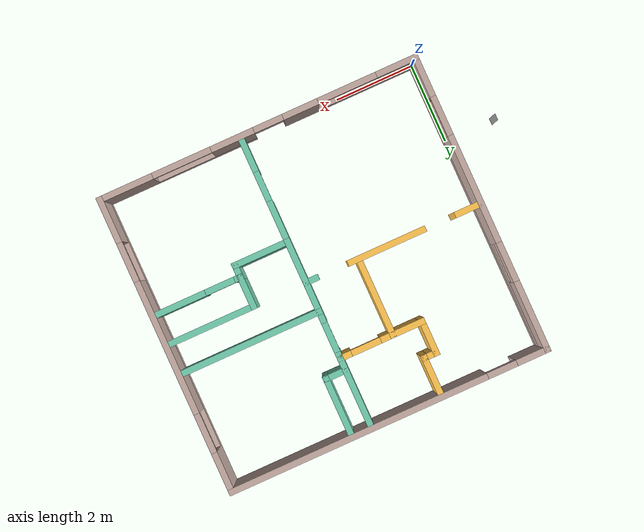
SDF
<?xml version='1.0'?>
<sdf version='1.6'>
  <model name='apartment'>
    <pose frame=''>4.05 3.75 0 0 -0 0</pose>
    <link name='Door_1'>
      <collision name='Door_1_Collision'>
        <geometry>
          <box>
            <size>0 0.17 2</size>
          </box>
        </geometry>
        <pose frame=''>0 0 1 0 -0 0</pose>
      </collision>
      <visual name='Door_1_Visual'>
        <pose frame=''>0 0 1 0 -0 0</pose>
        <geometry>
          <box>
            <size>0 0.17 2</size>
          </box>
        </geometry>
        <material>
          <script>
            <uri>file://media/materials/scripts/gazebo.material</uri>
            <name>Gazebo/Grey</name>
          </script>
        </material>
      </visual>
      <pose frame=''>-5.25474 -1.71616 0 0 0 -3.11558</pose>
    </link>
    <link name='Wall_0'>
      <pose frame=''>-0 3.75 0 0 -0 0</pose>
      <visual name='Wall_0_Visual_0'>
        <pose frame=''>-3.7 0 1.25 0 -0 0</pose>
        <geometry>
          <box>
            <size>0.85 0.15 2.5</size>
          </box>
        </geometry>
        <material>
          <script>
            <uri>file://media/materials/scripts/gazebo.material</uri>
            <name>Gazebo/Grey</name>
          </script>
          <ambient>0.760784 0.662745 0.627451 1</ambient>
        </material>
        <meta>
          <layer>0</layer>
        </meta>
      </visual>
      <collision name='Wall_0_Collision_0'>
        <geometry>
          <box>
            <size>0.85 0.15 2.5</size>
          </box>
        </geometry>
        <pose frame=''>-3.7 0 1.25 0 -0 0</pose>
      </collision>
      <visual name='Wall_0_Visual_1'>
        <pose frame=''>0.8 0 1.25 0 -0 0</pose>
        <geometry>
          <box>
            <size>6.65 0.15 2.5</size>
          </box>
        </geometry>
        <material>
          <script>
            <uri>file://media/materials/scripts/gazebo.material</uri>
            <name>Gazebo/Grey</name>
          </script>
          <ambient>0.760784 0.662745 0.627451 1</ambient>
        </material>
        <meta>
          <layer>0</layer>
        </meta>
      </visual>
      <collision name='Wall_0_Collision_1'>
        <geometry>
          <box>
            <size>6.65 0.15 2.5</size>
          </box>
        </geometry>
        <pose frame=''>0.8 0 1.25 0 -0 0</pose>
      </collision>
      <visual name='Wall_0_Visual_2'>
        <pose frame=''>-2.9 0 2.25 0 -0 0</pose>
        <geometry>
          <box>
            <size>0.75 0.15 0.5</size>
          </box>
        </geometry>
        <material>
          <script>
            <uri>file://media/materials/scripts/gazebo.material</uri>
            <name>Gazebo/Grey</name>
          </script>
          <ambient>0.760784 0.662745 0.627451 1</ambient>
        </material>
        <meta>
          <layer>0</layer>
        </meta>
      </visual>
      <collision name='Wall_0_Collision_2'>
        <geometry>
          <box>
            <size>0.75 0.15 0.5</size>
          </box>
        </geometry>
        <pose frame=''>-2.9 0 2.25 0 -0 0</pose>
      </collision>
    </link>
    <link name='Wall_1'>
      <pose frame=''>4.05 -0 0 0 -0 -1.5708</pose>
      <visual name='Wall_1_Visual_0'>
        <pose frame=''>-3.2875 0 1.25 0 -0 0</pose>
        <geometry>
          <box>
            <size>1.075 0.15 2.5</size>
          </box>
        </geometry>
        <material>
          <script>
            <uri>file://media/materials/scripts/gazebo.material</uri>
            <name>Gazebo/Grey</name>
          </script>
          <ambient>0.760784 0.662745 0.627451 1</ambient>
        </material>
        <meta>
          <layer>0</layer>
        </meta>
      </visual>
      <collision name='Wall_1_Collision_0'>
        <geometry>
          <box>
            <size>1.075 0.15 2.5</size>
          </box>
        </geometry>
        <pose frame=''>-3.2875 0 1.25 0 -0 0</pose>
      </collision>
      <visual name='Wall_1_Visual_1'>
        <pose frame=''>0.5375 0 0.25 0 -0 0</pose>
        <geometry>
          <box>
            <size>6.575 0.15 0.5</size>
          </box>
        </geometry>
        <material>
          <script>
            <uri>file://media/materials/scripts/gazebo.material</uri>
            <name>Gazebo/Grey</name>
          </script>
          <ambient>0.760784 0.662745 0.627451 1</ambient>
        </material>
        <meta>
          <layer>0</layer>
        </meta>
      </visual>
      <collision name='Wall_1_Collision_1'>
        <geometry>
          <box>
            <size>6.575 0.15 0.5</size>
          </box>
        </geometry>
        <pose frame=''>0.5375 0 0.25 0 -0 0</pose>
      </collision>
      <visual name='Wall_1_Visual_2'>
        <pose frame=''>-0.050682 0 1.5 0 -0 0</pose>
        <geometry>
          <box>
            <size>3.39864 0.15 2</size>
          </box>
        </geometry>
        <material>
          <script>
            <uri>file://media/materials/scripts/gazebo.material</uri>
            <name>Gazebo/Grey</name>
          </script>
          <ambient>0.760784 0.662745 0.627451 1</ambient>
        </material>
        <meta>
          <layer>0</layer>
        </meta>
      </visual>
      <collision name='Wall_1_Collision_2'>
        <geometry>
          <box>
            <size>3.39864 0.15 2</size>
          </box>
        </geometry>
        <pose frame=''>-0.050682 0 1.5 0 -0 0</pose>
      </collision>
      <visual name='Wall_1_Visual_3'>
        <pose frame=''>3.23682 0 1.5 0 -0 0</pose>
        <geometry>
          <box>
            <size>1.17636 0.15 2</size>
          </box>
        </geometry>
        <material>
          <script>
            <uri>file://media/materials/scripts/gazebo.material</uri>
            <name>Gazebo/Grey</name>
          </script>
          <ambient>0.760784 0.662745 0.627451 1</ambient>
        </material>
        <meta>
          <layer>0</layer>
        </meta>
      </visual>
      <collision name='Wall_1_Collision_3'>
        <geometry>
          <box>
            <size>1.17636 0.15 2</size>
          </box>
        </geometry>
        <pose frame=''>3.23682 0 1.5 0 -0 0</pose>
      </collision>
      <visual name='Wall_1_Visual_4'>
        <pose frame=''>-2.25 0 2.4 0 -0 0</pose>
        <geometry>
          <box>
            <size>1 0.15 0.2</size>
          </box>
        </geometry>
        <material>
          <script>
            <uri>file://media/materials/scripts/gazebo.material</uri>
            <name>Gazebo/Grey</name>
          </script>
          <ambient>0.760784 0.662745 0.627451 1</ambient>
        </material>
        <meta>
          <layer>0</layer>
        </meta>
      </visual>
      <collision name='Wall_1_Collision_4'>
        <geometry>
          <box>
            <size>1 0.15 0.2</size>
          </box>
        </geometry>
        <pose frame=''>-2.25 0 2.4 0 -0 0</pose>
      </collision>
      <visual name='Wall_1_Visual_5'>
        <pose frame=''>2.14864 0 2.4 0 -0 0</pose>
        <geometry>
          <box>
            <size>1 0.15 0.2</size>
          </box>
        </geometry>
        <material>
          <script>
            <uri>file://media/materials/scripts/gazebo.material</uri>
            <name>Gazebo/Grey</name>
          </script>
          <ambient>0.760784 0.662745 0.627451 1</ambient>
        </material>
        <meta>
          <layer>0</layer>
        </meta>
      </visual>
      <collision name='Wall_1_Collision_5'>
        <geometry>
          <box>
            <size>1 0.15 0.2</size>
          </box>
        </geometry>
        <pose frame=''>2.14864 0 2.4 0 -0 0</pose>
      </collision>
    </link>
    <link name='Wall_10'>
      <collision name='Wall_10_Collision'>
        <geometry>
          <box>
            <size>0.9 0.15 2.5</size>
          </box>
        </geometry>
        <pose frame=''>0 0 1.25 0 -0 0</pose>
      </collision>
      <visual name='Wall_10_Visual'>
        <pose frame=''>0 0 1.25 0 -0 0</pose>
        <geometry>
          <box>
            <size>0.9 0.15 2.5</size>
          </box>
        </geometry>
        <material>
          <script>
            <uri>file://media/materials/scripts/gazebo.material</uri>
            <name>Gazebo/Grey</name>
          </script>
          <ambient>0.435294 0.796078 0.67451 1</ambient>
        </material>
        <meta>
          <layer>0</layer>
        </meta>
      </visual>
      <pose frame=''>1.8 -0.375 0 0 -0 1.5708</pose>
    </link>
    <link name='Wall_11'>
      <collision name='Wall_11_Collision'>
        <geometry>
          <box>
            <size>2.25 0.15 2.5</size>
          </box>
        </geometry>
        <pose frame=''>0 0 1.25 0 -0 0</pose>
      </collision>
      <visual name='Wall_11_Visual'>
        <pose frame=''>0 0 1.25 0 -0 0</pose>
        <geometry>
          <box>
            <size>2.25 0.15 2.5</size>
          </box>
        </geometry>
        <material>
          <script>
            <uri>file://media/materials/scripts/gazebo.material</uri>
            <name>Gazebo/Grey</name>
          </script>
          <ambient>0.435294 0.796078 0.67451 1</ambient>
        </material>
        <meta>
          <layer>0</layer>
        </meta>
      </visual>
      <pose frame=''>2.85 -0 0 0 -0 0</pose>
    </link>
    <link name='Wall_13'>
      <collision name='Wall_13_Collision'>
        <geometry>
          <box>
            <size>3.6 0.15 2.5</size>
          </box>
        </geometry>
        <pose frame=''>0 0 1.25 0 -0 0</pose>
      </collision>
      <visual name='Wall_13_Visual'>
        <pose frame=''>0 0 1.25 0 -0 0</pose>
        <geometry>
          <box>
            <size>3.6 0.15 2.5</size>
          </box>
        </geometry>
        <material>
          <script>
            <uri>file://media/materials/scripts/gazebo.material</uri>
            <name>Gazebo/Grey</name>
          </script>
          <ambient>0.435294 0.796078 0.67451 1</ambient>
        </material>
        <meta>
          <layer>0</layer>
        </meta>
      </visual>
      <pose frame=''>2.175 0.75 0 0 -0 3.14159</pose>
    </link>
    <link name='Wall_14'>
      <collision name='Wall_14_Collision'>
        <geometry>
          <box>
            <size>1.95 0.15 2.5</size>
          </box>
        </geometry>
        <pose frame=''>0 0 1.25 0 -0 0</pose>
      </collision>
      <visual name='Wall_14_Visual'>
        <pose frame=''>0 0 1.25 0 -0 0</pose>
        <geometry>
          <box>
            <size>1.95 0.15 2.5</size>
          </box>
        </geometry>
        <material>
          <script>
            <uri>file://media/materials/scripts/gazebo.material</uri>
            <name>Gazebo/Grey</name>
          </script>
          <ambient>0.435294 0.796078 0.67451 1</ambient>
        </material>
        <meta>
          <layer>0</layer>
        </meta>
      </visual>
      <pose frame=''>0.45 -0.15 0 0 -0 -1.5708</pose>
    </link>
    <link name='Wall_16'>
      <pose frame=''>0.45 2.175 0 0 -0 1.5708</pose>
      <visual name='Wall_16_Visual_0'>
        <pose frame=''>-1.31932 0 1.25 0 -0 0</pose>
        <geometry>
          <box>
            <size>0.361363 0.15 2.5</size>
          </box>
        </geometry>
        <material>
          <script>
            <uri>file://media/materials/scripts/gazebo.material</uri>
            <name>Gazebo/Grey</name>
          </script>
          <ambient>0.435294 0.796078 0.67451 1</ambient>
        </material>
        <meta>
          <layer>0</layer>
        </meta>
      </visual>
      <collision name='Wall_16_Collision_0'>
        <geometry>
          <box>
            <size>0.361363 0.15 2.5</size>
          </box>
        </geometry>
        <pose frame=''>-1.31932 0 1.25 0 -0 0</pose>
      </collision>
      <visual name='Wall_16_Visual_1'>
        <pose frame=''>0.555682 0 1.25 0 -0 0</pose>
        <geometry>
          <box>
            <size>1.88864 0.15 2.5</size>
          </box>
        </geometry>
        <material>
          <script>
            <uri>file://media/materials/scripts/gazebo.material</uri>
            <name>Gazebo/Grey</name>
          </script>
          <ambient>0.435294 0.796078 0.67451 1</ambient>
        </material>
        <meta>
          <layer>0</layer>
        </meta>
      </visual>
      <collision name='Wall_16_Collision_1'>
        <geometry>
          <box>
            <size>1.88864 0.15 2.5</size>
          </box>
        </geometry>
        <pose frame=''>0.555682 0 1.25 0 -0 0</pose>
      </collision>
      <visual name='Wall_16_Visual_2'>
        <pose frame=''>-0.763637 0 2.25 0 -0 0</pose>
        <geometry>
          <box>
            <size>0.75 0.15 0.5</size>
          </box>
        </geometry>
        <material>
          <script>
            <uri>file://media/materials/scripts/gazebo.material</uri>
            <name>Gazebo/Grey</name>
          </script>
          <ambient>0.435294 0.796078 0.67451 1</ambient>
        </material>
        <meta>
          <layer>0</layer>
        </meta>
      </visual>
      <collision name='Wall_16_Collision_2'>
        <geometry>
          <box>
            <size>0.75 0.15 0.5</size>
          </box>
        </geometry>
        <pose frame=''>-0.763637 0 2.25 0 -0 0</pose>
      </collision>
    </link>
    <link name='Wall_18'>
      <collision name='Wall_18_Collision'>
        <geometry>
          <box>
            <size>0.65 0.15 2.5</size>
          </box>
        </geometry>
        <pose frame=''>0 0 1.25 0 -0 0</pose>
      </collision>
      <visual name='Wall_18_Visual'>
        <pose frame=''>0 0 1.25 0 -0 0</pose>
        <geometry>
          <box>
            <size>0.65 0.15 2.5</size>
          </box>
        </geometry>
        <material>
          <script>
            <uri>file://media/materials/scripts/gazebo.material</uri>
            <name>Gazebo/Grey</name>
          </script>
          <ambient>0.435294 0.796078 0.67451 1</ambient>
        </material>
        <meta>
          <layer>0</layer>
        </meta>
      </visual>
      <pose frame=''>0.7 2.25 0 0 -0 0</pose>
    </link>
    <link name='Wall_19'>
      <collision name='Wall_19_Collision'>
        <geometry>
          <box>
            <size>1.5 0.15 2.5</size>
          </box>
        </geometry>
        <pose frame=''>0 0 1.25 0 -0 0</pose>
      </collision>
      <visual name='Wall_19_Visual'>
        <pose frame=''>0 0 1.25 0 -0 0</pose>
        <geometry>
          <box>
            <size>1.5 0.15 2.5</size>
          </box>
        </geometry>
        <material>
          <script>
            <uri>file://media/materials/scripts/gazebo.material</uri>
            <name>Gazebo/Grey</name>
          </script>
          <ambient>0.435294 0.796078 0.67451 1</ambient>
        </material>
        <meta>
          <layer>0</layer>
        </meta>
      </visual>
      <pose frame=''>0.95 2.925 0 0 -0 1.5708</pose>
    </link>
    <link name='Wall_2'>
      <pose frame=''>-0 -3.75 0 0 -0 3.14159</pose>
      <visual name='Wall_2_Visual_0'>
        <pose frame=''>-3.4125 0 1.25 0 -0 0</pose>
        <geometry>
          <box>
            <size>1.425 0.15 2.5</size>
          </box>
        </geometry>
        <material>
          <script>
            <uri>file://media/materials/scripts/gazebo.material</uri>
            <name>Gazebo/Grey</name>
          </script>
          <ambient>0.760784 0.662745 0.627451 1</ambient>
        </material>
        <meta>
          <layer>0</layer>
        </meta>
      </visual>
      <collision name='Wall_2_Collision_0'>
        <geometry>
          <box>
            <size>1.425 0.15 2.5</size>
          </box>
        </geometry>
        <pose frame=''>-3.4125 0 1.25 0 -0 0</pose>
      </collision>
      <visual name='Wall_2_Visual_1'>
        <pose frame=''>1.1 0 1.25 0 -0 0</pose>
        <geometry>
          <box>
            <size>0.899991 0.15 2.5</size>
          </box>
        </geometry>
        <material>
          <script>
            <uri>file://media/materials/scripts/gazebo.material</uri>
            <name>Gazebo/Grey</name>
          </script>
          <ambient>0.760784 0.662745 0.627451 1</ambient>
        </material>
        <meta>
          <layer>0</layer>
        </meta>
      </visual>
      <collision name='Wall_2_Collision_1'>
        <geometry>
          <box>
            <size>0.899991 0.15 2.5</size>
          </box>
        </geometry>
        <pose frame=''>1.1 0 1.25 0 -0 0</pose>
      </collision>
      <visual name='Wall_2_Visual_2'>
        <pose frame=''>-1.4 0 0.25 0 -0 0</pose>
        <geometry>
          <box>
            <size>2.60001 0.15 0.5</size>
          </box>
        </geometry>
        <material>
          <script>
            <uri>file://media/materials/scripts/gazebo.material</uri>
            <name>Gazebo/Grey</name>
          </script>
          <ambient>0.760784 0.662745 0.627451 1</ambient>
        </material>
        <meta>
          <layer>0</layer>
        </meta>
      </visual>
      <collision name='Wall_2_Collision_2'>
        <geometry>
          <box>
            <size>2.60001 0.15 0.5</size>
          </box>
        </geometry>
        <pose frame=''>-1.4 0 0.25 0 -0 0</pose>
      </collision>
      <visual name='Wall_2_Visual_3'>
        <pose frame=''>2.8375 0 0.25 0 -0 0</pose>
        <geometry>
          <box>
            <size>2.575 0.15 0.5</size>
          </box>
        </geometry>
        <material>
          <script>
            <uri>file://media/materials/scripts/gazebo.material</uri>
            <name>Gazebo/Grey</name>
          </script>
          <ambient>0.760784 0.662745 0.627451 1</ambient>
        </material>
        <meta>
          <layer>0</layer>
        </meta>
      </visual>
      <collision name='Wall_2_Collision_3'>
        <geometry>
          <box>
            <size>2.575 0.15 0.5</size>
          </box>
        </geometry>
        <pose frame=''>2.8375 0 0.25 0 -0 0</pose>
      </collision>
      <visual name='Wall_2_Visual_4'>
        <pose frame=''>-0.649995 0 1.5 0 -0 0</pose>
        <geometry>
          <box>
            <size>1.10001 0.15 2</size>
          </box>
        </geometry>
        <material>
          <script>
            <uri>file://media/materials/scripts/gazebo.material</uri>
            <name>Gazebo/Grey</name>
          </script>
          <ambient>0.760784 0.662745 0.627451 1</ambient>
        </material>
        <meta>
          <layer>0</layer>
        </meta>
      </visual>
      <collision name='Wall_2_Collision_4'>
        <geometry>
          <box>
            <size>1.10001 0.15 2</size>
          </box>
        </geometry>
        <pose frame=''>-0.649995 0 1.5 0 -0 0</pose>
      </collision>
      <visual name='Wall_2_Visual_5'>
        <pose frame=''>-0.649995 0 1.5 0 -0 0</pose>
        <geometry>
          <box>
            <size>1.10001 0.15 2</size>
          </box>
        </geometry>
        <material>
          <script>
            <uri>file://media/materials/scripts/gazebo.material</uri>
            <name>Gazebo/Grey</name>
          </script>
          <ambient>0.760784 0.662745 0.627451 1</ambient>
        </material>
        <meta>
          <layer>0</layer>
        </meta>
      </visual>
      <collision name='Wall_2_Collision_5'>
        <geometry>
          <box>
            <size>1.10001 0.15 2</size>
          </box>
        </geometry>
        <pose frame=''>-0.649995 0 1.5 0 -0 0</pose>
      </collision>
      <visual name='Wall_2_Visual_6'>
        <pose frame=''>3.5875 0 1.5 0 -0 0</pose>
        <geometry>
          <box>
            <size>1.075 0.15 2</size>
          </box>
        </geometry>
        <material>
          <script>
            <uri>file://media/materials/scripts/gazebo.material</uri>
            <name>Gazebo/Grey</name>
          </script>
          <ambient>0.760784 0.662745 0.627451 1</ambient>
        </material>
        <meta>
          <layer>0</layer>
        </meta>
      </visual>
      <collision name='Wall_2_Collision_6'>
        <geometry>
          <box>
            <size>1.075 0.15 2</size>
          </box>
        </geometry>
        <pose frame=''>3.5875 0 1.5 0 -0 0</pose>
      </collision>
      <visual name='Wall_2_Visual_7'>
        <pose frame=''>0.275009 0 2.25 0 -0 0</pose>
        <geometry>
          <box>
            <size>0.75 0.15 0.5</size>
          </box>
        </geometry>
        <material>
          <script>
            <uri>file://media/materials/scripts/gazebo.material</uri>
            <name>Gazebo/Grey</name>
          </script>
          <ambient>0.760784 0.662745 0.627451 1</ambient>
        </material>
        <meta>
          <layer>0</layer>
        </meta>
      </visual>
      <collision name='Wall_2_Collision_7'>
        <geometry>
          <box>
            <size>0.75 0.15 0.5</size>
          </box>
        </geometry>
        <pose frame=''>0.275009 0 2.25 0 -0 0</pose>
      </collision>
      <visual name='Wall_2_Visual_8'>
        <pose frame=''>0.275009 0 2.25 0 -0 0</pose>
        <geometry>
          <box>
            <size>0.75 0.15 0.5</size>
          </box>
        </geometry>
        <material>
          <script>
            <uri>file://media/materials/scripts/gazebo.material</uri>
            <name>Gazebo/Grey</name>
          </script>
          <ambient>0.760784 0.662745 0.627451 1</ambient>
        </material>
        <meta>
          <layer>0</layer>
        </meta>
      </visual>
      <collision name='Wall_2_Collision_8'>
        <geometry>
          <box>
            <size>0.75 0.15 0.5</size>
          </box>
        </geometry>
        <pose frame=''>0.275009 0 2.25 0 -0 0</pose>
      </collision>
      <visual name='Wall_2_Visual_9'>
        <pose frame=''>-1.95 0 2.4 0 -0 0</pose>
        <geometry>
          <box>
            <size>1.5 0.15 0.2</size>
          </box>
        </geometry>
        <material>
          <script>
            <uri>file://media/materials/scripts/gazebo.material</uri>
            <name>Gazebo/Grey</name>
          </script>
          <ambient>0.760784 0.662745 0.627451 1</ambient>
        </material>
        <meta>
          <layer>0</layer>
        </meta>
      </visual>
      <collision name='Wall_2_Collision_9'>
        <geometry>
          <box>
            <size>1.5 0.15 0.2</size>
          </box>
        </geometry>
        <pose frame=''>-1.95 0 2.4 0 -0 0</pose>
      </collision>
      <visual name='Wall_2_Visual_10'>
        <pose frame=''>2.3 0 2.4 0 -0 0</pose>
        <geometry>
          <box>
            <size>1.5 0.15 0.2</size>
          </box>
        </geometry>
        <material>
          <script>
            <uri>file://media/materials/scripts/gazebo.material</uri>
            <name>Gazebo/Grey</name>
          </script>
          <ambient>0.760784 0.662745 0.627451 1</ambient>
        </material>
        <meta>
          <layer>0</layer>
        </meta>
      </visual>
      <collision name='Wall_2_Collision_10'>
        <geometry>
          <box>
            <size>1.5 0.15 0.2</size>
          </box>
        </geometry>
        <pose frame=''>2.3 0 2.4 0 -0 0</pose>
      </collision>
    </link>
    <link name='Wall_25'>
      <collision name='Wall_25_Collision'>
        <geometry>
          <box>
            <size>0.9 0.15 2.5</size>
          </box>
        </geometry>
        <pose frame=''>0 0 1.25 0 -0 0</pose>
      </collision>
      <visual name='Wall_25_Visual'>
        <pose frame=''>0 0 1.25 0 -0 0</pose>
        <geometry>
          <box>
            <size>0.9 0.15 2.5</size>
          </box>
        </geometry>
        <material>
          <script>
            <uri>file://media/materials/scripts/gazebo.material</uri>
            <name>Gazebo/Grey</name>
          </script>
          <ambient>1 0.764706 0.305882 1</ambient>
        </material>
        <meta>
          <layer>0</layer>
        </meta>
      </visual>
      <pose frame=''>-1.275 1.95 0 0 -0 3.14159</pose>
    </link>
    <link name='Wall_26'>
      <collision name='Wall_26_Collision'>
        <geometry>
          <box>
            <size>0.95 0.15 2.5</size>
          </box>
        </geometry>
        <pose frame=''>0 0 1.25 0 -0 0</pose>
      </collision>
      <visual name='Wall_26_Visual'>
        <pose frame=''>0 0 1.25 0 -0 0</pose>
        <geometry>
          <box>
            <size>0.95 0.15 2.5</size>
          </box>
        </geometry>
        <material>
          <script>
            <uri>file://media/materials/scripts/gazebo.material</uri>
            <name>Gazebo/Grey</name>
          </script>
          <ambient>1 0.764706 0.305882 1</ambient>
        </material>
        <meta>
          <layer>0</layer>
        </meta>
      </visual>
      <pose frame=''>-1.65 2.35 0 0 -0 1.5708</pose>
    </link>
    <link name='Wall_27'>
      <collision name='Wall_27_Collision'>
        <geometry>
          <box>
            <size>0.45 0.15 2.5</size>
          </box>
        </geometry>
        <pose frame=''>0 0 1.25 0 -0 0</pose>
      </collision>
      <visual name='Wall_27_Visual'>
        <pose frame=''>0 0 1.25 0 -0 0</pose>
        <geometry>
          <box>
            <size>0.45 0.15 2.5</size>
          </box>
        </geometry>
        <material>
          <script>
            <uri>file://media/materials/scripts/gazebo.material</uri>
            <name>Gazebo/Grey</name>
          </script>
          <ambient>1 0.764706 0.305882 1</ambient>
        </material>
        <meta>
          <layer>0</layer>
        </meta>
      </visual>
      <pose frame=''>-1.5 2.75 0 0 -0 0</pose>
    </link>
    <link name='Wall_28'>
      <collision name='Wall_28_Collision'>
        <geometry>
          <box>
            <size>1 0.15 2.5</size>
          </box>
        </geometry>
        <pose frame=''>0 0 1.25 0 -0 0</pose>
      </collision>
      <visual name='Wall_28_Visual'>
        <pose frame=''>0 0 1.25 0 -0 0</pose>
        <geometry>
          <box>
            <size>1 0.15 2.5</size>
          </box>
        </geometry>
        <material>
          <script>
            <uri>file://media/materials/scripts/gazebo.material</uri>
            <name>Gazebo/Grey</name>
          </script>
          <ambient>1 0.764706 0.305882 1</ambient>
        </material>
        <meta>
          <layer>0</layer>
        </meta>
      </visual>
      <pose frame=''>-1.35 3.175 0 0 -0 1.5708</pose>
    </link>
    <link name='Wall_3'>
      <pose frame=''>-4.05 -0 0 0 -0 1.5708</pose>
      <visual name='Wall_3_Visual_0'>
        <pose frame=''>-3.2875 0 1.25 0 -0 0</pose>
        <geometry>
          <box>
            <size>1.075 0.15 2.5</size>
          </box>
        </geometry>
        <material>
          <script>
            <uri>file://media/materials/scripts/gazebo.material</uri>
            <name>Gazebo/Grey</name>
          </script>
          <ambient>0.760784 0.662745 0.627451 1</ambient>
        </material>
        <meta>
          <layer>0</layer>
        </meta>
      </visual>
      <collision name='Wall_3_Collision_0'>
        <geometry>
          <box>
            <size>1.075 0.15 2.5</size>
          </box>
        </geometry>
        <pose frame=''>-3.2875 0 1.25 0 -0 0</pose>
      </collision>
      <visual name='Wall_3_Visual_1'>
        <pose frame=''>0.5375 0 0.25 0 -0 0</pose>
        <geometry>
          <box>
            <size>6.575 0.15 0.5</size>
          </box>
        </geometry>
        <material>
          <script>
            <uri>file://media/materials/scripts/gazebo.material</uri>
            <name>Gazebo/Grey</name>
          </script>
          <ambient>0.760784 0.662745 0.627451 1</ambient>
        </material>
        <meta>
          <layer>0</layer>
        </meta>
      </visual>
      <collision name='Wall_3_Collision_1'>
        <geometry>
          <box>
            <size>6.575 0.15 0.5</size>
          </box>
        </geometry>
        <pose frame=''>0.5375 0 0.25 0 -0 0</pose>
      </collision>
      <visual name='Wall_3_Visual_2'>
        <pose frame=''>-0.375 0 1.5 0 -0 0</pose>
        <geometry>
          <box>
            <size>2.75 0.15 2</size>
          </box>
        </geometry>
        <material>
          <script>
            <uri>file://media/materials/scripts/gazebo.material</uri>
            <name>Gazebo/Grey</name>
          </script>
          <ambient>0.760784 0.662745 0.627451 1</ambient>
        </material>
        <meta>
          <layer>0</layer>
        </meta>
      </visual>
      <collision name='Wall_3_Collision_2'>
        <geometry>
          <box>
            <size>2.75 0.15 2</size>
          </box>
        </geometry>
        <pose frame=''>-0.375 0 1.5 0 -0 0</pose>
      </collision>
      <visual name='Wall_3_Visual_3'>
        <pose frame=''>2.4125 0 0.825 0 -0 0</pose>
        <geometry>
          <box>
            <size>2.825 0.15 0.65</size>
          </box>
        </geometry>
        <material>
          <script>
            <uri>file://media/materials/scripts/gazebo.material</uri>
            <name>Gazebo/Grey</name>
          </script>
          <ambient>0.760784 0.662745 0.627451 1</ambient>
        </material>
        <meta>
          <layer>0</layer>
        </meta>
      </visual>
      <collision name='Wall_3_Collision_3'>
        <geometry>
          <box>
            <size>2.825 0.15 0.65</size>
          </box>
        </geometry>
        <pose frame=''>2.4125 0 0.825 0 -0 0</pose>
      </collision>
      <visual name='Wall_3_Visual_4'>
        <pose frame=''>2.9125 0 1.825 0 -0 0</pose>
        <geometry>
          <box>
            <size>1.825 0.15 1.35</size>
          </box>
        </geometry>
        <material>
          <script>
            <uri>file://media/materials/scripts/gazebo.material</uri>
            <name>Gazebo/Grey</name>
          </script>
          <ambient>0.760784 0.662745 0.627451 1</ambient>
        </material>
        <meta>
          <layer>0</layer>
        </meta>
      </visual>
      <collision name='Wall_3_Collision_4'>
        <geometry>
          <box>
            <size>1.825 0.15 1.35</size>
          </box>
        </geometry>
        <pose frame=''>2.9125 0 1.825 0 -0 0</pose>
      </collision>
      <visual name='Wall_3_Visual_5'>
        <pose frame=''>1.5 0 2.075 0 -0 0</pose>
        <geometry>
          <box>
            <size>1 0.15 0.85</size>
          </box>
        </geometry>
        <material>
          <script>
            <uri>file://media/materials/scripts/gazebo.material</uri>
            <name>Gazebo/Grey</name>
          </script>
          <ambient>0.760784 0.662745 0.627451 1</ambient>
        </material>
        <meta>
          <layer>0</layer>
        </meta>
      </visual>
      <collision name='Wall_3_Collision_5'>
        <geometry>
          <box>
            <size>1 0.15 0.85</size>
          </box>
        </geometry>
        <pose frame=''>1.5 0 2.075 0 -0 0</pose>
      </collision>
      <visual name='Wall_3_Visual_6'>
        <pose frame=''>-2.25 0 2.4 0 -0 0</pose>
        <geometry>
          <box>
            <size>1 0.15 0.2</size>
          </box>
        </geometry>
        <material>
          <script>
            <uri>file://media/materials/scripts/gazebo.material</uri>
            <name>Gazebo/Grey</name>
          </script>
          <ambient>0.760784 0.662745 0.627451 1</ambient>
        </material>
        <meta>
          <layer>0</layer>
        </meta>
      </visual>
      <collision name='Wall_3_Collision_6'>
        <geometry>
          <box>
            <size>1 0.15 0.2</size>
          </box>
        </geometry>
        <pose frame=''>-2.25 0 2.4 0 -0 0</pose>
      </collision>
    </link>
    <link name='Wall_33'>
      <collision name='Wall_33_Collision'>
        <geometry>
          <box>
            <size>2 0.15 2.5</size>
          </box>
        </geometry>
        <pose frame=''>0 0 1.25 0 -0 0</pose>
      </collision>
      <visual name='Wall_33_Visual'>
        <pose frame=''>0 0 1.25 0 -0 0</pose>
        <geometry>
          <box>
            <size>2 0.15 2.5</size>
          </box>
        </geometry>
        <material>
          <script>
            <uri>file://media/materials/scripts/gazebo.material</uri>
            <name>Gazebo/Grey</name>
          </script>
          <ambient>1 0.764706 0.305882 1</ambient>
        </material>
        <meta>
          <layer>0</layer>
        </meta>
      </visual>
      <pose frame=''>-1.625 -0 0 0 -0 3.14159</pose>
    </link>
    <link name='Wall_35'>
      <collision name='Wall_35_Collision'>
        <geometry>
          <box>
            <size>0.735 0.15 2.5</size>
          </box>
        </geometry>
        <pose frame=''>0 0 1.25 0 -0 0</pose>
      </collision>
      <visual name='Wall_35_Visual'>
        <pose frame=''>0 0 1.25 0 -0 0</pose>
        <geometry>
          <box>
            <size>0.735 0.15 2.5</size>
          </box>
        </geometry>
        <material>
          <script>
            <uri>file://media/materials/scripts/gazebo.material</uri>
            <name>Gazebo/Grey</name>
          </script>
          <ambient>1 0.764706 0.305882 1</ambient>
        </material>
        <meta>
          <layer>0</layer>
        </meta>
      </visual>
      <pose frame=''>-3.7425 -0 0 0 -0 0</pose>
    </link>
    <link name='Wall_38'>
      <collision name='Wall_38_Collision'>
        <geometry>
          <box>
            <size>0.4 0.15 2.5</size>
          </box>
        </geometry>
        <pose frame=''>0 0 1.25 0 -0 0</pose>
      </collision>
      <visual name='Wall_38_Visual'>
        <pose frame=''>0 0 1.25 0 -0 0</pose>
        <geometry>
          <box>
            <size>0.4 0.15 2.5</size>
          </box>
        </geometry>
        <material>
          <script>
            <uri>file://media/materials/scripts/gazebo.material</uri>
            <name>Gazebo/Grey</name>
          </script>
          <ambient>0.435294 0.796078 0.67451 1</ambient>
        </material>
        <meta>
          <layer>0</layer>
        </meta>
      </visual>
      <pose frame=''>0.325 -0 0 0 -0 3.14159</pose>
    </link>
    <link name='Wall_40'>
      <collision name='Wall_40_Collision'>
        <geometry>
          <box>
            <size>2 0.15 2.5</size>
          </box>
        </geometry>
        <pose frame=''>0 0 1.25 0 -0 0</pose>
      </collision>
      <visual name='Wall_40_Visual'>
        <pose frame=''>0 0 1.25 0 -0 0</pose>
        <geometry>
          <box>
            <size>2 0.15 2.5</size>
          </box>
        </geometry>
        <material>
          <script>
            <uri>file://media/materials/scripts/gazebo.material</uri>
            <name>Gazebo/Grey</name>
          </script>
          <ambient>1 0.764706 0.305882 1</ambient>
        </material>
        <meta>
          <layer>0</layer>
        </meta>
      </visual>
      <pose frame=''>-0.9 1.025 0 0 -0 -1.5708</pose>
    </link>
    <link name='Wall_42'>
      <pose frame=''>-0.225 1.95 0 0 -0 0</pose>
      <visual name='Wall_42_Visual_0'>
        <pose frame=''>-0.557505 0 1.25 0 -0 0</pose>
        <geometry>
          <box>
            <size>0.384991 0.15 2.5</size>
          </box>
        </geometry>
        <material>
          <script>
            <uri>file://media/materials/scripts/gazebo.material</uri>
            <name>Gazebo/Grey</name>
          </script>
          <ambient>1 0.764706 0.305882 1</ambient>
        </material>
        <meta>
          <layer>0</layer>
        </meta>
      </visual>
      <collision name='Wall_42_Collision_0'>
        <geometry>
          <box>
            <size>0.384991 0.15 2.5</size>
          </box>
        </geometry>
        <pose frame=''>-0.557505 0 1.25 0 -0 0</pose>
      </collision>
      <visual name='Wall_42_Visual_1'>
        <pose frame=''>0.567495 0 1.25 0 -0 0</pose>
        <geometry>
          <box>
            <size>0.365009 0.15 2.5</size>
          </box>
        </geometry>
        <material>
          <script>
            <uri>file://media/materials/scripts/gazebo.material</uri>
            <name>Gazebo/Grey</name>
          </script>
          <ambient>1 0.764706 0.305882 1</ambient>
        </material>
        <meta>
          <layer>0</layer>
        </meta>
      </visual>
      <collision name='Wall_42_Collision_1'>
        <geometry>
          <box>
            <size>0.365009 0.15 2.5</size>
          </box>
        </geometry>
        <pose frame=''>0.567495 0 1.25 0 -0 0</pose>
      </collision>
      <visual name='Wall_42_Visual_2'>
        <pose frame=''>0.009991 0 2.25 0 -0 0</pose>
        <geometry>
          <box>
            <size>0.75 0.15 0.5</size>
          </box>
        </geometry>
        <material>
          <script>
            <uri>file://media/materials/scripts/gazebo.material</uri>
            <name>Gazebo/Grey</name>
          </script>
          <ambient>1 0.764706 0.305882 1</ambient>
        </material>
        <meta>
          <layer>0</layer>
        </meta>
      </visual>
      <collision name='Wall_42_Collision_2'>
        <geometry>
          <box>
            <size>0.75 0.15 0.5</size>
          </box>
        </geometry>
        <pose frame=''>0.009991 0 2.25 0 -0 0</pose>
      </collision>
    </link>
    <link name='Wall_5'>
      <pose frame=''>0.45 -2.325 0 0 -0 1.5708</pose>
      <visual name='Wall_5_Visual_0'>
        <pose frame=''>-0.934318 0 1.25 0 -0 0</pose>
        <geometry>
          <box>
            <size>0.831364 0.15 2.5</size>
          </box>
        </geometry>
        <material>
          <script>
            <uri>file://media/materials/scripts/gazebo.material</uri>
            <name>Gazebo/Grey</name>
          </script>
          <ambient>0.435294 0.796078 0.67451 1</ambient>
        </material>
        <meta>
          <layer>0</layer>
        </meta>
      </visual>
      <collision name='Wall_5_Collision_0'>
        <geometry>
          <box>
            <size>0.831364 0.15 2.5</size>
          </box>
        </geometry>
        <pose frame=''>-0.934318 0 1.25 0 -0 0</pose>
      </collision>
      <visual name='Wall_5_Visual_1'>
        <pose frame=''>0.790682 0 1.25 0 -0 0</pose>
        <geometry>
          <box>
            <size>1.11864 0.15 2.5</size>
          </box>
        </geometry>
        <material>
          <script>
            <uri>file://media/materials/scripts/gazebo.material</uri>
            <name>Gazebo/Grey</name>
          </script>
          <ambient>0.435294 0.796078 0.67451 1</ambient>
        </material>
        <meta>
          <layer>0</layer>
        </meta>
      </visual>
      <collision name='Wall_5_Collision_1'>
        <geometry>
          <box>
            <size>1.11864 0.15 2.5</size>
          </box>
        </geometry>
        <pose frame=''>0.790682 0 1.25 0 -0 0</pose>
      </collision>
      <visual name='Wall_5_Visual_2'>
        <pose frame=''>-0.143636 0 2.25 0 -0 0</pose>
        <geometry>
          <box>
            <size>0.75 0.15 0.5</size>
          </box>
        </geometry>
        <material>
          <script>
            <uri>file://media/materials/scripts/gazebo.material</uri>
            <name>Gazebo/Grey</name>
          </script>
          <ambient>0.435294 0.796078 0.67451 1</ambient>
        </material>
        <meta>
          <layer>0</layer>
        </meta>
      </visual>
      <collision name='Wall_5_Collision_2'>
        <geometry>
          <box>
            <size>0.75 0.15 0.5</size>
          </box>
        </geometry>
        <pose frame=''>-0.143636 0 2.25 0 -0 0</pose>
      </collision>
    </link>
    <link name='Wall_6'>
      <collision name='Wall_6_Collision'>
        <geometry>
          <box>
            <size>1.5 0.15 2.5</size>
          </box>
        </geometry>
        <pose frame=''>0 0 1.25 0 -0 0</pose>
      </collision>
      <visual name='Wall_6_Visual'>
        <pose frame=''>0 0 1.25 0 -0 0</pose>
        <geometry>
          <box>
            <size>1.5 0.15 2.5</size>
          </box>
        </geometry>
        <material>
          <script>
            <uri>file://media/materials/scripts/gazebo.material</uri>
            <name>Gazebo/Grey</name>
          </script>
          <ambient>0.435294 0.796078 0.67451 1</ambient>
        </material>
        <meta>
          <layer>0</layer>
        </meta>
      </visual>
      <pose frame=''>1.125 -1.05 0 0 -0 0</pose>
    </link>
    <link name='Wall_7'>
      <collision name='Wall_7_Collision'>
        <geometry>
          <box>
            <size>0.45 0.15 2.5</size>
          </box>
        </geometry>
        <pose frame=''>0 0 1.25 0 -0 0</pose>
      </collision>
      <visual name='Wall_7_Visual'>
        <pose frame=''>0 0 1.25 0 -0 0</pose>
        <geometry>
          <box>
            <size>0.45 0.15 2.5</size>
          </box>
        </geometry>
        <material>
          <script>
            <uri>file://media/materials/scripts/gazebo.material</uri>
            <name>Gazebo/Grey</name>
          </script>
          <ambient>0.435294 0.796078 0.67451 1</ambient>
        </material>
        <meta>
          <layer>0</layer>
        </meta>
      </visual>
      <pose frame=''>1.8 -0.9 0 0 -0 1.5708</pose>
    </link>
    <link name='Wall_8'>
      <pose frame=''>2.85 -0.75 0 0 -0 0</pose>
      <visual name='Wall_8_Visual_0'>
        <pose frame=''>-1.01319 0 1.25 0 -0 0</pose>
        <geometry>
          <box>
            <size>0.223613 0.15 2.5</size>
          </box>
        </geometry>
        <material>
          <script>
            <uri>file://media/materials/scripts/gazebo.material</uri>
            <name>Gazebo/Grey</name>
          </script>
          <ambient>0.435294 0.796078 0.67451 1</ambient>
        </material>
        <meta>
          <layer>0</layer>
        </meta>
      </visual>
      <collision name='Wall_8_Collision_0'>
        <geometry>
          <box>
            <size>0.223613 0.15 2.5</size>
          </box>
        </geometry>
        <pose frame=''>-1.01319 0 1.25 0 -0 0</pose>
      </collision>
      <visual name='Wall_8_Visual_1'>
        <pose frame=''>0.486807 0 1.25 0 -0 0</pose>
        <geometry>
          <box>
            <size>1.27639 0.15 2.5</size>
          </box>
        </geometry>
        <material>
          <script>
            <uri>file://media/materials/scripts/gazebo.material</uri>
            <name>Gazebo/Grey</name>
          </script>
          <ambient>0.435294 0.796078 0.67451 1</ambient>
        </material>
        <meta>
          <layer>0</layer>
        </meta>
      </visual>
      <collision name='Wall_8_Collision_1'>
        <geometry>
          <box>
            <size>1.27639 0.15 2.5</size>
          </box>
        </geometry>
        <pose frame=''>0.486807 0 1.25 0 -0 0</pose>
      </collision>
      <visual name='Wall_8_Visual_2'>
        <pose frame=''>-0.526387 0 2.25 0 -0 0</pose>
        <geometry>
          <box>
            <size>0.75 0.15 0.5</size>
          </box>
        </geometry>
        <material>
          <script>
            <uri>file://media/materials/scripts/gazebo.material</uri>
            <name>Gazebo/Grey</name>
          </script>
          <ambient>0.435294 0.796078 0.67451 1</ambient>
        </material>
        <meta>
          <layer>0</layer>
        </meta>
      </visual>
      <collision name='Wall_8_Collision_2'>
        <geometry>
          <box>
            <size>0.75 0.15 0.5</size>
          </box>
        </geometry>
        <pose frame=''>-0.526387 0 2.25 0 -0 0</pose>
      </collision>
    </link>
    <static>1</static>
  </model>
</sdf>
